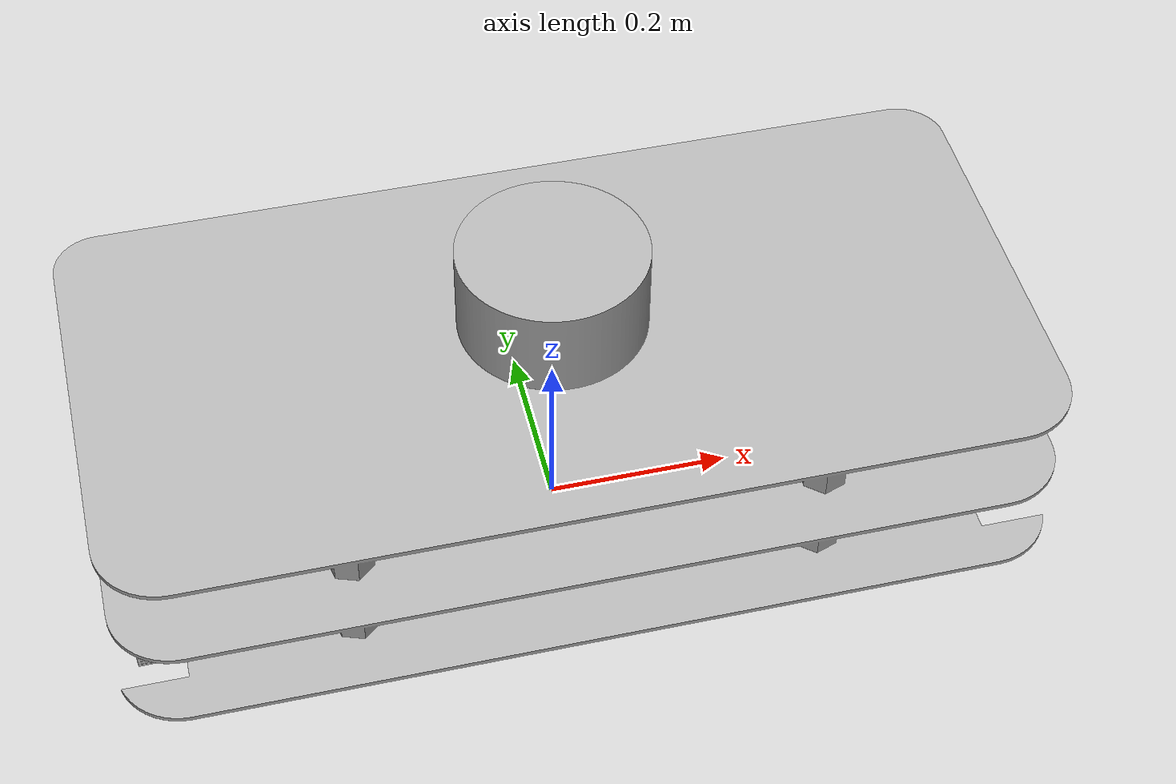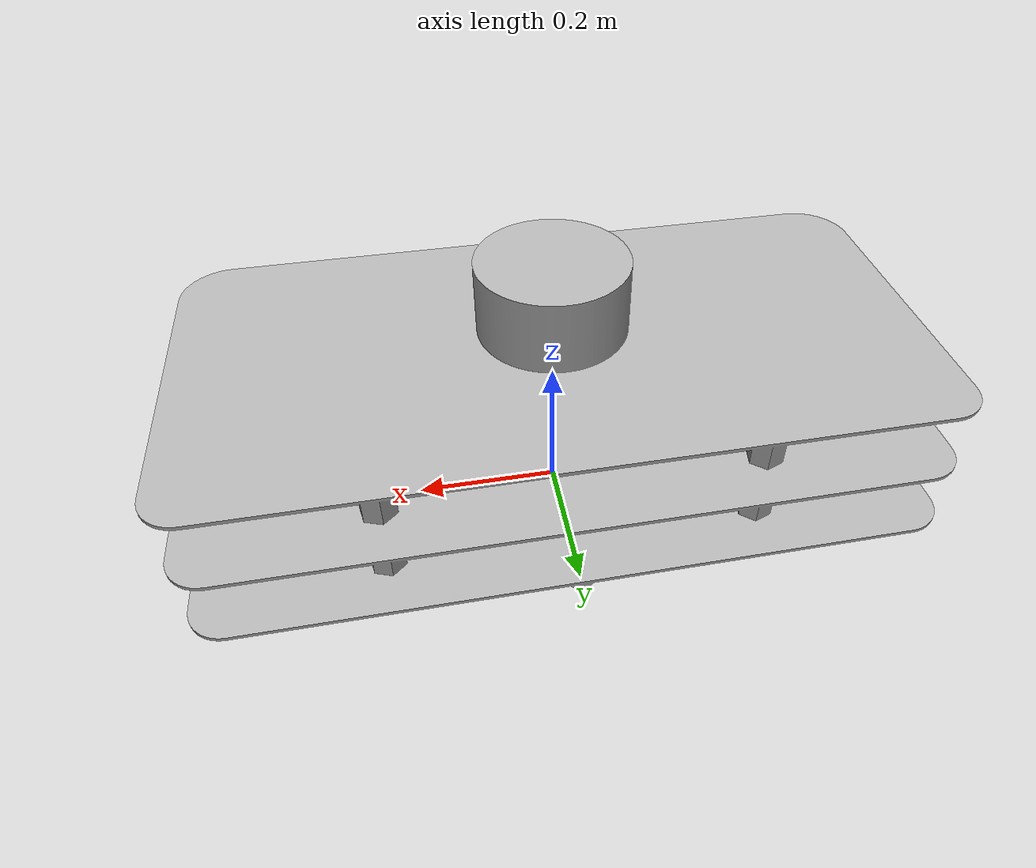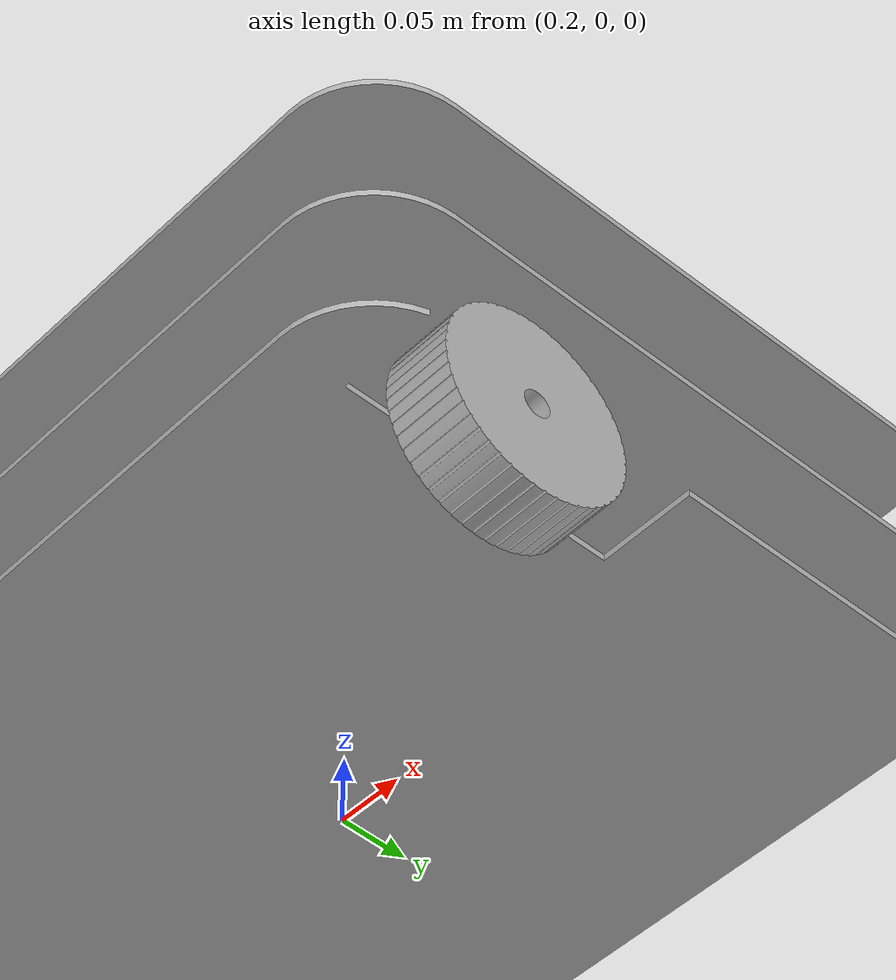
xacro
<?xml version="1.0" ?>
<robot name="delivery_bot" xmlns:xacro="http://www.ros.org/wiki/xacro">

<xacro:include filename="$(find delivery_bot_description)/urdf/materials.xacro" />
<xacro:include filename="$(find delivery_bot_description)/urdf/delivery_bot.trans" />
<xacro:include filename="$(find delivery_bot_description)/urdf/delivery_bot.gazebo" />
<link name="base_link">
  <inertial>
    <origin xyz="1.2772647548322993e-05 -0.0078067399534786875 0.1470559303282844" rpy="0 0 0"/>
    <mass value="78.12379262241626"/>
    <inertia ixx="2.113641" iyy="6.269602" izz="7.347742" ixy="-0.000212" iyz="-0.040148" ixz="0.000119"/>
  </inertial>
  <visual>
    <origin xyz="0 0 0" rpy="0 0 0"/>
    <geometry>
      <mesh filename="package://delivery_bot_description/meshes/base_link.stl" scale="0.001 0.001 0.001"/>
    </geometry>
    <material name="silver"/>
  </visual>
  <collision>
    <origin xyz="0 0 0" rpy="0 0 0"/>
    <geometry>
      <mesh filename="package://delivery_bot_description/meshes/base_link.stl" scale="0.001 0.001 0.001"/>
    </geometry>
  </collision>
</link>

<link name="right_wheel_1">
  <inertial>
    <origin xyz="0.025000000000000078 5.551115123125783e-17 2.1940782524154656e-14" rpy="0 0 0"/>
    <mass value="5.888027134307574"/>
    <inertia ixx="0.014648" iyy="0.008551" izz="0.008551" ixy="0.0" iyz="0.0" ixz="0.0"/>
  </inertial>
  <visual>
    <origin xyz="-0.43 0.1 -0.07" rpy="0 0 0"/>
    <geometry>
      <mesh filename="package://delivery_bot_description/meshes/right_wheel_1.stl" scale="0.001 0.001 0.001"/>
    </geometry>
    <material name="silver"/>
  </visual>
  <collision>
    <origin xyz="-0.43 0.1 -0.07" rpy="0 0 0"/>
    <geometry>
      <mesh filename="package://delivery_bot_description/meshes/right_wheel_1.stl" scale="0.001 0.001 0.001"/>
    </geometry>
  </collision>
</link>

<link name="left_wheel_1">
  <inertial>
    <origin xyz="-0.025000000000000078 5.551115123125783e-17 2.1940782524154656e-14" rpy="0 0 0"/>
    <mass value="5.888027134307574"/>
    <inertia ixx="0.014648" iyy="0.008551" izz="0.008551" ixy="0.0" iyz="0.0" ixz="0.0"/>
  </inertial>
  <visual>
    <origin xyz="0.43 0.1 -0.07" rpy="0 0 0"/>
    <geometry>
      <mesh filename="package://delivery_bot_description/meshes/left_wheel_1.stl" scale="0.001 0.001 0.001"/>
    </geometry>
    <material name="silver"/>
  </visual>
  <collision>
    <origin xyz="0.43 0.1 -0.07" rpy="0 0 0"/>
    <geometry>
      <mesh filename="package://delivery_bot_description/meshes/left_wheel_1.stl" scale="0.001 0.001 0.001"/>
    </geometry>
  </collision>
</link>

<link name="lidar_1">
  <inertial>
    <origin xyz="-2.3160092400488117e-17 1.1580046200244058e-17 0.04999999999999999" rpy="0 0 0"/>
    <mass value="24.661502330679873"/>
    <inertia ixx="0.082205" iyy="0.082205" izz="0.123308" ixy="-0.0" iyz="0.0" ixz="-0.0"/>
  </inertial>
  <visual>
    <origin xyz="-0.0 -0.0 -0.28" rpy="0 0 0"/>
    <geometry>
      <mesh filename="package://delivery_bot_description/meshes/lidar_1.stl" scale="0.001 0.001 0.001"/>
    </geometry>
    <material name="silver"/>
  </visual>
  <collision>
    <origin xyz="-0.0 -0.0 -0.28" rpy="0 0 0"/>
    <geometry>
      <mesh filename="package://delivery_bot_description/meshes/lidar_1.stl" scale="0.001 0.001 0.001"/>
    </geometry>
  </collision>
</link>

<joint name="right_wheel_joint" type="continuous">
  <origin xyz="0.43 -0.1 0.07" rpy="0 0 0"/>
  <parent link="base_link"/>
  <child link="right_wheel_1"/>
  <axis xyz="1.0 0.0 0.0"/>
</joint>

<joint name="left_wheel_joint" type="continuous">
  <origin xyz="-0.43 -0.1 0.07" rpy="0 0 0"/>
  <parent link="base_link"/>
  <child link="left_wheel_1"/>
  <axis xyz="1.0 0.0 0.0"/>
</joint>

<joint name="Rigid 3" type="fixed">
  <origin xyz="0.0 0.0 0.28" rpy="0 0 0"/>
  <parent link="base_link"/>
  <child link="lidar_1"/>
</joint>

</robot>

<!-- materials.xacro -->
<robot name="delivery_bot" xmlns:xacro="http://www.ros.org/wiki/xacro" >

<material name="silver">
  <color rgba="0.700 0.700 0.700 1.000"/>
</material>

</robot>

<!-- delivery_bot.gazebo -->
<robot name="delivery_bot" xmlns:xacro="http://www.ros.org/wiki/xacro" >

<xacro:property name="body_color" value="Gazebo/Silver" />
<xacro:property name="black_color" value="Gazebo/Black" />
<xacro:property name="orange_color" value="Gazebo/Orange" />
<xacro:property name="red_color" value="Gazebo/Red" />

<gazebo>
  <plugin name="control" filename="libgazebo_ros_control.so"/>
</gazebo>
<gazebo reference="base_link">
  <material>${body_color}</material>
  <mu1>0.2</mu1>
  <mu2>0.2</mu2>
  <selfCollide>true</selfCollide>
  <gravity>true</gravity>
</gazebo>

<gazebo reference="right_wheel_1">
  <material>${orange_color}</material>
  <mu1>100</mu1>
  <mu2>100</mu2>
  <selfCollide>true</selfCollide>
</gazebo>

<gazebo reference="left_wheel_1">
  <material>${orange_color}</material>
  <mu1>100</mu1>
  <mu2>100</mu2>
  <selfCollide>true</selfCollide>
</gazebo>

<gazebo reference="lidar_1">
  <material>${red_color}</material>
  <mu1>0.2</mu1>
  <mu2>0.2</mu2>
  <selfCollide>true</selfCollide>
</gazebo>

<gazebo>
  <plugin name="differential_drive_controller" filename="libgazebo_ros_diff_drive.so">

    <!-- Plugin update rate in Hz -->
    <updateRate>10</updateRate>

    <!-- Name of left joint, defaults to `left_joint` -->
    <leftJoint>right_wheel_joint</leftJoint>

    <!-- Name of right joint, defaults to `right_joint` -->
    <rightJoint>left_wheel_joint</rightJoint>

    <!-- The distance from the center of one wheel to the other, in meters, defaults to 0.34 m -->
    <wheelSeparation>0.86</wheelSeparation>

    <!-- Diameter of the wheels, in meters, defaults to 0.15 m -->
    <wheelDiameter>0.14</wheelDiameter>

    <!-- Wheel acceleration, in rad/s^2, defaults to 0.0 rad/s^2 -->
    <wheelAcceleration>1.0</wheelAcceleration>

    <!-- Maximum torque which the wheels can produce, in Nm, defaults to 5 Nm -->
    <wheelTorque>20</wheelTorque>

    <!-- Topic to receive geometry_msgs/Twist message commands, defaults to `cmd_vel` -->
    <commandTopic>cmd_vel</commandTopic>

    <!-- Topic to publish nav_msgs/Odometry messages, defaults to `odom` -->
    <odometryTopic>odom</odometryTopic>

    <!-- Odometry frame, defaults to `odom` -->
    <odometryFrame>odom</odometryFrame>

    <!-- Robot frame to calculate odometry from, defaults to `base_footprint` -->
    <robotBaseFrame>base_link</robotBaseFrame>

    <!-- Odometry source, 0 for ENCODER, 1 for WORLD, defaults to WORLD -->
    <odometrySource>1</odometrySource>

    <!-- Set to true to publish transforms for the wheel links, defaults to false -->
    <publishWheelTF>true</publishWheelTF>

    <!-- Set to true to publish transforms for the odometry, defaults to true -->
    <publishOdom>true</publishOdom>

    <!-- Set to true to publish sensor_msgs/JointState on /joint_states for the wheel joints, defaults to false -->
    <publishWheelJointState>true</publishWheelJointState>

    <!-- Set to true to swap right and left wheels, defaults to true -->
    <legacyMode>false</legacyMode>
  </plugin>
</gazebo>

 <!-- hokuyo -->
  <gazebo reference="lidar_1">
    <sensor type="ray" name="lidar_scan">
      <pose>0 0 0 0 0 0</pose>
      <visualize>true</visualize>
      <update_rate>10</update_rate>
      <ray>
        <scan>
          <horizontal>
            <samples>720</samples>
            <resolution>1</resolution>
            <min_angle>-3.141592</min_angle>
            <max_angle>0</max_angle>
          </horizontal>
        </scan>
        <range>
          <min>0.10</min>
          <max>30.0</max>
          <resolution>0.01</resolution>
        </range>
        <noise>
          <type>gaussian</type>
          <mean>0.0</mean>
          <stddev>0.01</stddev>
        </noise>
      </ray>
      <plugin name="gazebo_ros_head_hokuyo_controller" filename="libgazebo_ros_laser.so">
        <topicName>/laser_scan</topicName>
        <frameName>lidar_1</frameName>
      </plugin>
    </sensor>
  </gazebo>

</robot>
